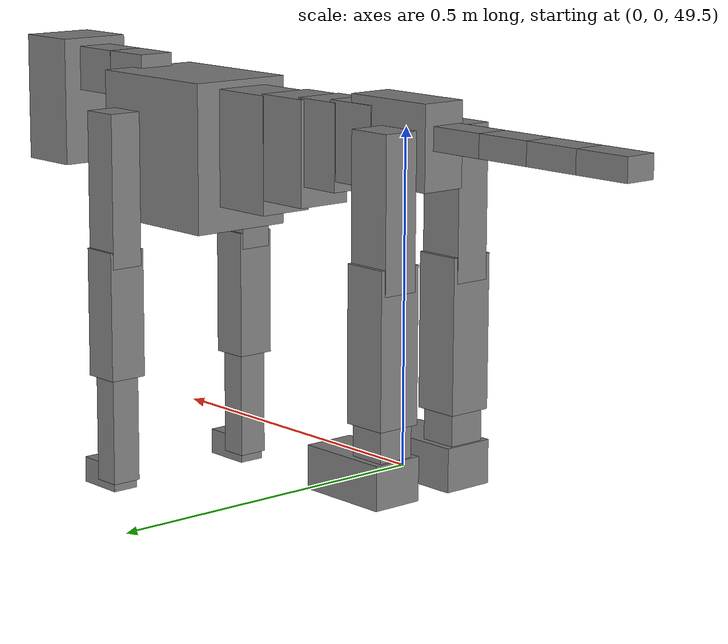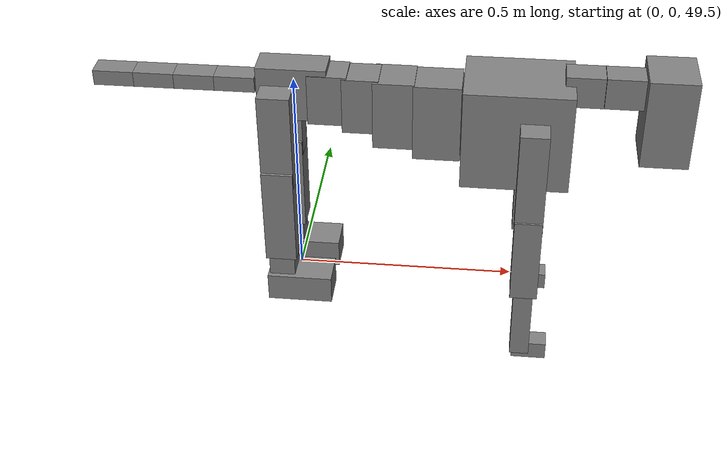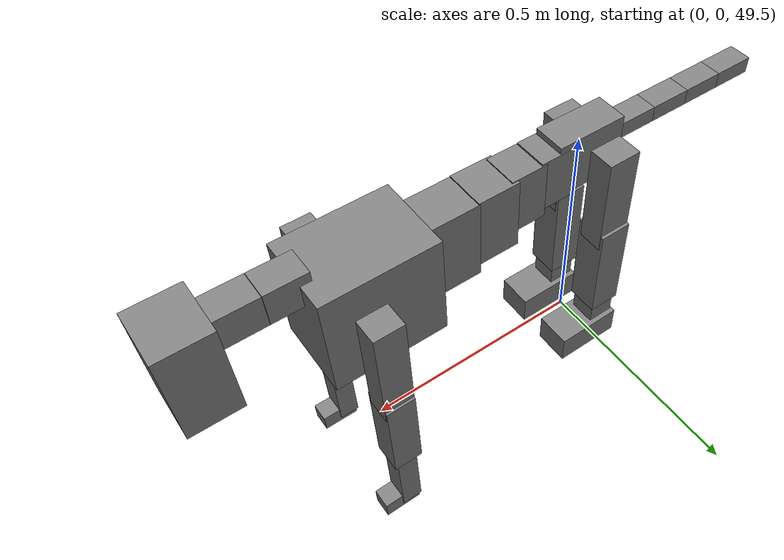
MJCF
<mujoco model="dog">

    <default>
        <joint armature="0.02" stiffness="1" damping="0.2" limited="true"/>
        <geom condim="3" friction="1 0.05 0.05" margin="0.01"/>
        <motor ctrllimited="true" ctrlrange="-1.0 1.0" forcelimited="true" gear="50"/>
    </default>

    <compiler inertiafromgeom="true" angle="radian"/>

    <option timestep="0.016" iterations="50" tolerance="1e-10" solver="Newton" jacobian="dense" cone="pyramidal"/>

    <size nconmax="20000" njmax="60000" nstack="5000000"/>
    <visual>
        <map force="0.1" zfar="30"/>
        <rgba haze="0.15 0.25 0.35 1"/>
        <quality shadowsize="2048"/>
        <global offwidth="800" offheight="800"/>
    </visual>

    <asset>
        <texture type="skybox" builtin="gradient" rgb1="0.3 0.5 0.7" rgb2="0 0 0" width="512" height="512"/>
        <texture name="texplane" type="2d" builtin="checker" rgb1=".2 .3 .4" rgb2=".1 0.15 0.2" width="512" height="512"
                 mark="cross" markrgb=".8 .8 .8"/>
        <texture name="texgeom" type="cube" builtin="flat" mark="cross" width="127" height="1278" rgb1="0.8 0.6 0.4"
                 rgb2="0.8 0.6 0.4" markrgb="1 1 1" random="0.01"/>

        <material name="matplane" reflectance="0.3" texture="texplane" texrepeat="1 1" texuniform="true"/>
        <material name="matgeom" texture="texgeom" texuniform="true" rgba="0.8 0.6 .4 1"/>
    </asset>

    <worldbody>
        <geom name="floor" pos="0 0 0" size="0 0 .25" type="plane" material="matplane" condim="3"/>

        <light directional="false" diffuse=".2 .2 .2" specular="0 0 0" pos="0 0 5" dir="0 0 -1" castshadow="false"/>
        <light mode="targetbodycom" target="torso" directional="false" diffuse=".8 .8 .8" specular="0.3 0.3 0.3"
               pos="0 0 4.0" dir="0 0 -1"/>

        <body name="root" pos="0 0 50">
            <freejoint name="root_1"/>
            <geom type="box" pos="0 0 -0.02" size="0.0774  0.0358  0.063" density="2030"/>

            <body name="spine1" pos="0.054 0 0">
                <joint name="spine1_y" axis="0 1 0" range="0 0.7" limited="true"/>
                <geom type="box" pos="0.02375 0 -0.03" size="0.04375  0.0375  0.05985" density="2030"/>

                <body name="spine2" pos="0.0612 0 0">
                    <joint name="spine2_y" axis="0 1 0" range="-0.15 0.15" limited="true"/>
                    <geom type="box" pos="0.03555  0  -0.04" size="0.04055  0.039  0.06615" density="2030"/>

                    <body name="spine3" pos="0.0730 0 0">
                        <joint name="spine3_y" axis="0 1 0" range="-0.15 0.15" limited="true"/>
                        <geom type="box" pos="0.03555  0  -0.057" size="0.04555  0.0445  0.081" density="2030"/>

                        <body name="spine4" pos="0.0780 0 0">
                            <joint name="spine4_y" axis="0 1 0" range="-0.15 0.15" limited="true"/>
                            <geom type="box" pos="0.05265  0  -0.07" size="0.05265  0.045  0.09135" density="2030"/>

                            <body name="torso" pos="0.1082 0 0">
                                <joint name="torso_y" axis="0 1 0" range="-0.15 0.15" limited="true"/>
                                <geom type="box" pos="0.11925  0  -0.085" size="0.11925  0.085  0.11745"
                                      density="2030"/>

                                <body name="neck1" pos="0.2160  0   0.0180">
                                    <joint name="neck1_y" axis="0 1 0" range="-1.2  -1" limited="true"/>
                                    <geom type="box" pos="0.0423  0  0" size="0.0423  0.03  0.036" density="2325"/>

                                    <body name="neck2" pos="0.0853  0  0">
                                        <joint name="neck2_y" axis="0 1 0" range="0.1  0" limited="true"/>
                                        <geom type="box" pos="0.0423  0  0" size="0.0423  0.03  0.036" density="2325"/>

                                        <body name="head" pos="0.0853  0  0">
                                            <joint name="head_y" axis="0 1 0" range="-0.3  -0.2" limited="true"/>
                                            <geom type="box" pos="0.0531  0  -0.055" size="0.0531  0.06  0.1044"
                                                  density="4030"/>

                                        </body>
                                    </body>
                                </body>

                                <body name="front_shoulder" pos="0.156  0   -0.0480">
                                    <joint name="front_shoulder_y" axis="0 1 0" range="-1 1.5" limited="true"/>
                                    <geom type="box" pos="0 0.13 -0.0956" size="0.0313  0.0268  0.1223" density="1158"/>
                                    <geom type="box" pos="0 -0.13 -0.0956" size="0.0313  0.0268  0.1223"
                                          density="1158"/>

                                    <body name="front_elbow" pos="0  0  -0.1912">
                                        <joint name="front_elbow_y" axis="0 1 0" range="-2 0" limited="true"/>
                                        <geom type="box" pos="0 0.13 -0.1032" size="0.0306  0.0313  0.1032"
                                              density="1081"/>
                                        <geom type="box" pos="0 -0.13 -0.1032" size="0.0306  0.0313  0.1032"
                                              density="1081"/>

                                        <body name="front_wrist" pos="0  0  -0.2063">
                                            <joint name="front_wrist_y" axis="0 1 0" range="-0.2 0" limited="true"/>
                                            <geom type="box" pos="0 0.13 -0.0792" size="0.0219  0.0244  0.0924"
                                                  density="1664"/>
                                            <geom type="box" pos="0 -0.13 -0.0792" size="0.0219  0.0244  0.0924"
                                                  density="1664"/>

                                            <body name="front_finger_end" pos="0  0  -0.1584">
                                                <joint name="front_finger_y" axis="0 1 0" range="-0.4 1"
                                                       limited="true"/>
                                                <geom type="box" pos="0.0216  0.13  -0.0057"
                                                      size="0.0396  0.0216  0.0207" density="1515"/>
                                                <geom type="box" pos="0.0216  -0.13  -0.0057"
                                                      size="0.0396  0.0216  0.0207" density="1515"/>

                                            </body>

                                        </body>
                                    </body>
                                </body>

                            </body>
                        </body>
                    </body>
                </body>
            </body>

            <body name="back_hip" pos="-0.03 0 -0.018">
                <joint name="back_hip_y" axis="0 1 0" range="-1.5 0.3" limited="true"/>
                <geom type="box" pos="0 0.07 -0.0919" size="0.0361  0.0283  0.1147" density="1154"/>
                <geom type="box" pos="0 -0.07 -0.0919" size="0.0361  0.0283  0.1147" density="1154"/>

                <body name="back_knee" pos="0  0  -0.1838">
                    <joint name="back_knee_y" axis="0 1 0" range="0 2.8" limited="true"/>
                    <geom type="box" pos="0 0.07 -0.1009" size="0.0355  0.0350  0.1165" density="1227"/>
                    <geom type="box" pos="0 -0.07 -0.1009" size="0.0355  0.0350  0.1165" density="1227"/>

                    <body name="back_ankle" pos="0  0  -0.2018">
                        <joint name="back_ankle_y" axis="0 1 0" range="-2.2 0" limited="true"/>
                        <geom type="box" pos="0 0.07 -0.0394" size="0.0294  0.0294  0.0506" density="1284"/>
                        <geom type="box" pos="0 -0.07 -0.0394" size="0.0294  0.0294  0.0506" density="1284"/>

                        <body name="back_toe_end" pos="0  0  -0.0787">
                            <joint name="back_toe_y" axis="0 1 0" range="-0.4 1" limited="true"/>
                            <geom type="box" pos="0.0406  0.07  -0.0182" size="0.0745  0.0406  0.0332" density="1515"/>
                            <geom type="box" pos="0.0406  -0.07  -0.0182" size="0.0745  0.0406  0.0332" density="1515"/>

                        </body>
                    </body>
                </body>
            </body>

            <body name="tail1" pos="-0.074 0 -0.006">
                <joint name="tail1_y" axis="0 1 0" range="-0.2 0.2" limited="true"/>
                <geom type="box" pos="-0.0536  0  0" size="0.045  0.025  0.0175" density="1587"/>

                <body name="tail2" pos="-0.09 0 0">
                    <joint name="tail2_y" axis="0 1 0" range="-0.2 0.2" limited="true"/>
                    <geom type="box" pos="-0.0536  0  0" size="0.045  0.025  0.0175" density="1587"/>

                    <body name="tail3" pos="-0.09 0 0">
                        <joint name="tail3_y" axis="0 1 0" range="-0.2 0.2" limited="true"/>
                        <geom type="box" pos="-0.0536  0  0" size="0.045  0.025  0.0175" density="1587"/>

                        <body name="tail4" pos="-0.09 0 0">
                            <joint name="tail4_y" axis="0 1 0" range="-0.2 0.2" limited="true"/>
                            <geom type="box" pos="-0.0536  0  0" size="0.045  0.025  0.0175" density="1587"/>

                        </body>
                    </body>
                </body>
            </body>
        </body>
    </worldbody>

    <actuator>
        <motor joint="spine1_y" forcerange="-150 150     "/>
        <motor joint="spine2_y" forcerange="-150 150     "/>
        <motor joint="spine3_y" forcerange="-150 150     "/>
        <motor joint="spine4_y" forcerange="-150 150     "/>
        <motor joint="torso_y" forcerange="-150 150     "/>
        <motor joint="neck1_y" forcerange="-100 100       "/>
        <motor joint="neck2_y" forcerange="-100 100       "/>
        <motor joint="head_y" forcerange="-150 150       "/>
        <motor joint="front_shoulder_y" forcerange="-167.67 110.92"/>
        <motor joint="front_elbow_y" forcerange="-148.80 178.91"/>
        <motor joint="front_wrist_y" forcerange="-85.65 109.25"/>
        <motor joint="front_finger_y" forcerange="-26.15 48.95"/>
        <motor joint="back_hip_y" forcerange="-361.72 216.04"/>
        <motor joint="back_knee_y" forcerange="-337.07 372.15"/>
        <motor joint="back_angle_y" forcerange="-209.52 161.18"/>
        <motor joint="back_toe_y" forcerange="-127.42 117.65"/>
        <motor joint="tail1_y" forcerange="-50 50     "/>
        <motor joint="tail2_y" forcerange="-50 50     "/>
        <motor joint="tail3_y" forcerange="-50 50     "/>
        <motor joint="tail4_y" forcerange="-50 50     "/>
    </actuator>
</mujoco>
